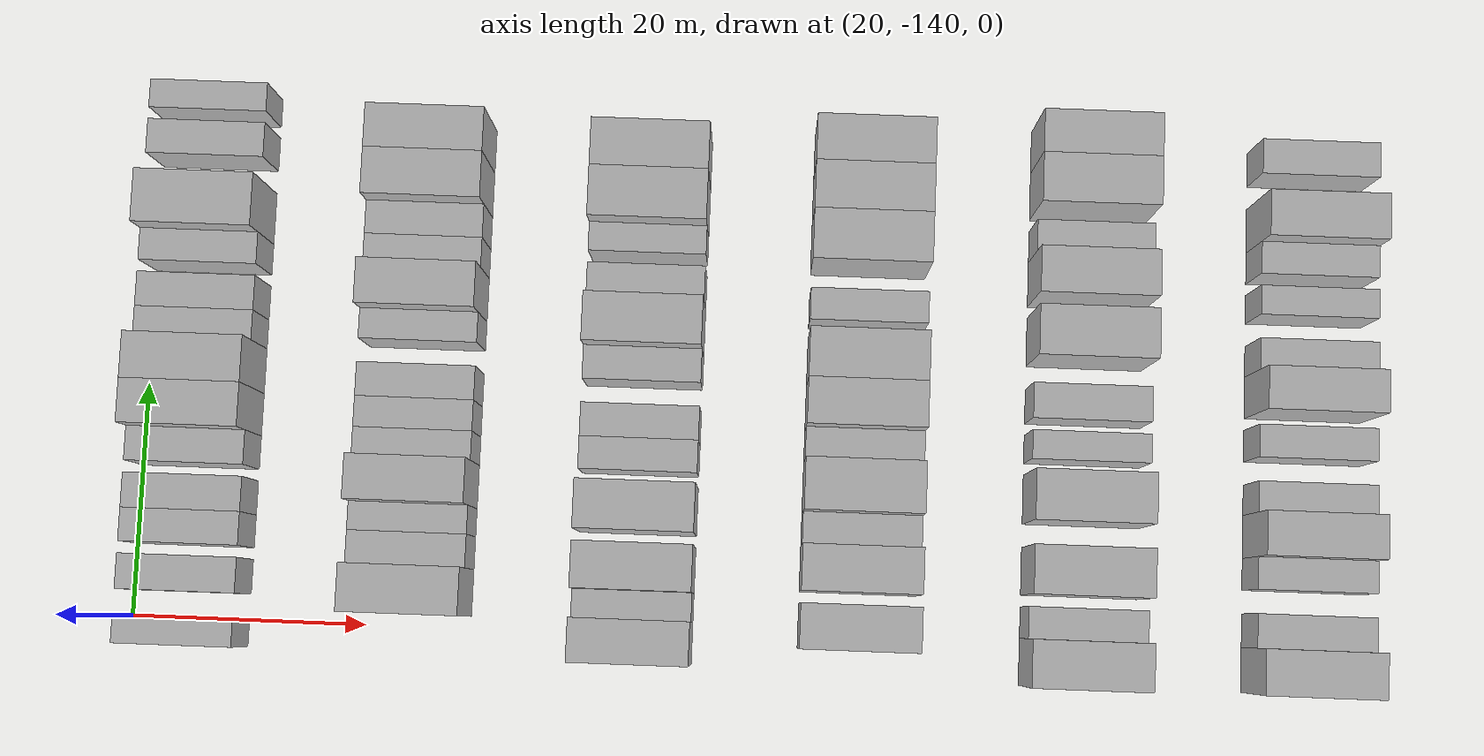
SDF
<sdf version="1.6">
 <world name="default">
  <model name="building_54">
   <static>1</static>
   <pose>25.0000 -140.9952 0 0.000000 0.000000 0.000000</pose>
   <link name="link">
    <pose>0 0 3.00 0 0 0</pose>
    <collision name="collision"><geometry><box><size>10.0000 2.4802 6.0000</size></box></geometry></collision>
    <visual name="visual">
     <cast_shadows>0</cast_shadows>
     <geometry><box><size>10.0000 2.4802 6.0000</size></box></geometry>
     <material>
      <script>
       <uri>model://HANNAS_wall/materials/scripts</uri>
       <uri>model://HANNAS_wall/materials/textures</uri>
       <name>vrc/HANNAS_wall</name>
      </script>
     </material>
    </visual>
   </link>
  </model>
  <model name="building_55">
   <static>1</static>
   <pose>25.0000 -136.2697 0 0.000000 0.000000 0.000000</pose>
   <link name="link">
    <pose>0 0 3.00 0 0 0</pose>
    <collision name="collision"><geometry><box><size>10.0000 2.9708 6.0000</size></box></geometry></collision>
    <visual name="visual">
     <cast_shadows>0</cast_shadows>
     <geometry><box><size>10.0000 2.9708 6.0000</size></box></geometry>
     <material>
      <script>
       <uri>model://HANNAS_wall/materials/scripts</uri>
       <uri>model://HANNAS_wall/materials/textures</uri>
       <name>vrc/HANNAS_wall</name>
      </script>
     </material>
    </visual>
   </link>
  </model>
  <model name="building_56">
   <static>1</static>
   <pose>25.0000 -132.3777 0 0.000000 0.000000 0.000000</pose>
   <link name="link">
    <pose>0 0 3.00 0 0 0</pose>
    <collision name="collision"><geometry><box><size>10.0000 2.8133 6.0000</size></box></geometry></collision>
    <visual name="visual">
     <cast_shadows>0</cast_shadows>
     <geometry><box><size>10.0000 2.8133 6.0000</size></box></geometry>
     <material>
      <script>
       <uri>model://HANNAS_wall/materials/scripts</uri>
       <uri>model://HANNAS_wall/materials/textures</uri>
       <name>vrc/HANNAS_wall</name>
      </script>
     </material>
    </visual>
   </link>
  </model>
  <model name="building_57">
   <static>1</static>
   <pose>25.0000 -129.4978 0 0.000000 0.000000 0.000000</pose>
   <link name="link">
    <pose>0 0 3.00 0 0 0</pose>
    <collision name="collision"><geometry><box><size>10.0000 2.9466 6.0000</size></box></geometry></collision>
    <visual name="visual">
     <cast_shadows>0</cast_shadows>
     <geometry><box><size>10.0000 2.9466 6.0000</size></box></geometry>
     <material>
      <script>
       <uri>model://HANNAS_wall/materials/scripts</uri>
       <uri>model://HANNAS_wall/materials/textures</uri>
       <name>vrc/HANNAS_wall</name>
      </script>
     </material>
    </visual>
   </link>
  </model>
  <model name="building_58">
   <static>1</static>
   <pose>25.0000 -125.5742 0 0.000000 0.000000 0.000000</pose>
   <link name="link">
    <pose>0 0 3.00 0 0 0</pose>
    <collision name="collision"><geometry><box><size>10.0000 2.9006 6.0000</size></box></geometry></collision>
    <visual name="visual">
     <cast_shadows>0</cast_shadows>
     <geometry><box><size>10.0000 2.9006 6.0000</size></box></geometry>
     <material>
      <script>
       <uri>model://HANNAS_wall/materials/scripts</uri>
       <uri>model://HANNAS_wall/materials/textures</uri>
       <name>vrc/HANNAS_wall</name>
      </script>
     </material>
    </visual>
   </link>
  </model>
  <model name="building_59">
   <static>1</static>
   <pose>25.0000 -122.2719 0 0.000000 0.000000 0.000000</pose>
   <link name="link">
    <pose>0 0 4.50 0 0 0</pose>
    <collision name="collision"><geometry><box><size>10.0000 3.7039 9.0000</size></box></geometry></collision>
    <visual name="visual">
     <cast_shadows>0</cast_shadows>
     <geometry><box><size>10.0000 3.7039 9.0000</size></box></geometry>
     <material>
      <script>
       <uri>model://HANNAS_wall/materials/scripts</uri>
       <uri>model://HANNAS_wall/materials/textures</uri>
       <name>vrc/HANNAS_wall</name>
      </script>
     </material>
    </visual>
   </link>
  </model>
  <model name="building_60">
   <static>1</static>
   <pose>25.0000 -118.4634 0 0.000000 0.000000 0.000000</pose>
   <link name="link">
    <pose>0 0 4.50 0 0 0</pose>
    <collision name="collision"><geometry><box><size>10.0000 3.9133 9.0000</size></box></geometry></collision>
    <visual name="visual">
     <cast_shadows>0</cast_shadows>
     <geometry><box><size>10.0000 3.9133 9.0000</size></box></geometry>
     <material>
      <script>
       <uri>model://HANNAS_wall/materials/scripts</uri>
       <uri>model://HANNAS_wall/materials/textures</uri>
       <name>vrc/HANNAS_wall</name>
      </script>
     </material>
    </visual>
   </link>
  </model>
  <model name="building_61">
   <static>1</static>
   <pose>25.0000 -115.2393 0 0.000000 0.000000 0.000000</pose>
   <link name="link">
    <pose>0 0 3.00 0 0 0</pose>
    <collision name="collision"><geometry><box><size>10.0000 2.5349 6.0000</size></box></geometry></collision>
    <visual name="visual">
     <cast_shadows>0</cast_shadows>
     <geometry><box><size>10.0000 2.5349 6.0000</size></box></geometry>
     <material>
      <script>
       <uri>model://HANNAS_wall/materials/scripts</uri>
       <uri>model://HANNAS_wall/materials/textures</uri>
       <name>vrc/HANNAS_wall</name>
      </script>
     </material>
    </visual>
   </link>
  </model>
  <model name="building_62">
   <static>1</static>
   <pose>25.0000 -112.4955 0 0.000000 0.000000 0.000000</pose>
   <link name="link">
    <pose>0 0 3.00 0 0 0</pose>
    <collision name="collision"><geometry><box><size>10.0000 2.9527 6.0000</size></box></geometry></collision>
    <visual name="visual">
     <cast_shadows>0</cast_shadows>
     <geometry><box><size>10.0000 2.9527 6.0000</size></box></geometry>
     <material>
      <script>
       <uri>model://HANNAS_wall/materials/scripts</uri>
       <uri>model://HANNAS_wall/materials/textures</uri>
       <name>vrc/HANNAS_wall</name>
      </script>
     </material>
    </visual>
   </link>
  </model>
  <model name="building_63">
   <static>1</static>
   <pose>25.0000 -108.6573 0 0.000000 0.000000 0.000000</pose>
   <link name="link">
    <pose>0 0 3.00 0 0 0</pose>
    <collision name="collision"><geometry><box><size>10.0000 2.7236 6.0000</size></box></geometry></collision>
    <visual name="visual">
     <cast_shadows>0</cast_shadows>
     <geometry><box><size>10.0000 2.7236 6.0000</size></box></geometry>
     <material>
      <script>
       <uri>model://HANNAS_wall/materials/scripts</uri>
       <uri>model://HANNAS_wall/materials/textures</uri>
       <name>vrc/HANNAS_wall</name>
      </script>
     </material>
    </visual>
   </link>
  </model>
  <model name="building_64">
   <static>1</static>
   <pose>25.0000 -105.0459 0 0.000000 0.000000 0.000000</pose>
   <link name="link">
    <pose>0 0 4.50 0 0 0</pose>
    <collision name="collision"><geometry><box><size>10.0000 4.4993 9.0000</size></box></geometry></collision>
    <visual name="visual">
     <cast_shadows>0</cast_shadows>
     <geometry><box><size>10.0000 4.4993 9.0000</size></box></geometry>
     <material>
      <script>
       <uri>model://HANNAS_wall/materials/scripts</uri>
       <uri>model://HANNAS_wall/materials/textures</uri>
       <name>vrc/HANNAS_wall</name>
      </script>
     </material>
    </visual>
   </link>
  </model>
  <model name="building_65">
   <static>1</static>
   <pose>25.0000 -99.3221 0 0.000000 0.000000 0.000000</pose>
   <link name="link">
    <pose>0 0 3.00 0 0 0</pose>
    <collision name="collision"><geometry><box><size>10.0000 2.9483 6.0000</size></box></geometry></collision>
    <visual name="visual">
     <cast_shadows>0</cast_shadows>
     <geometry><box><size>10.0000 2.9483 6.0000</size></box></geometry>
     <material>
      <script>
       <uri>model://HANNAS_wall/materials/scripts</uri>
       <uri>model://HANNAS_wall/materials/textures</uri>
       <name>vrc/HANNAS_wall</name>
      </script>
     </material>
    </visual>
   </link>
  </model>
  <model name="building_66">
   <static>1</static>
   <pose>25.0000 -95.6244 0 0.000000 0.000000 0.000000</pose>
   <link name="link">
    <pose>0 0 3.00 0 0 0</pose>
    <collision name="collision"><geometry><box><size>10.0000 2.4473 6.0000</size></box></geometry></collision>
    <visual name="visual">
     <cast_shadows>0</cast_shadows>
     <geometry><box><size>10.0000 2.4473 6.0000</size></box></geometry>
     <material>
      <script>
       <uri>model://HANNAS_wall/materials/scripts</uri>
       <uri>model://HANNAS_wall/materials/textures</uri>
       <name>vrc/HANNAS_wall</name>
      </script>
     </material>
    </visual>
   </link>
  </model>
  <model name="building_217">
   <static>1</static>
   <pose>44.0000 -136.9343 0 0.000000 0.000000 0.000000</pose>
   <link name="link">
    <pose>0 0 4.50 0 0 0</pose>
    <collision name="collision"><geometry><box><size>10.0000 3.9921 9.0000</size></box></geometry></collision>
    <visual name="visual">
     <cast_shadows>0</cast_shadows>
     <geometry><box><size>10.0000 3.9921 9.0000</size></box></geometry>
     <material>
      <script>
       <uri>model://HANNAS_wall/materials/scripts</uri>
       <uri>model://HANNAS_wall/materials/textures</uri>
       <name>vrc/HANNAS_wall</name>
      </script>
     </material>
    </visual>
   </link>
  </model>
  <model name="building_218">
   <static>1</static>
   <pose>44.0000 -133.5357 0 0.000000 0.000000 0.000000</pose>
   <link name="link">
    <pose>0 0 3.00 0 0 0</pose>
    <collision name="collision"><geometry><box><size>10.0000 2.8050 6.0000</size></box></geometry></collision>
    <visual name="visual">
     <cast_shadows>0</cast_shadows>
     <geometry><box><size>10.0000 2.8050 6.0000</size></box></geometry>
     <material>
      <script>
       <uri>model://HANNAS_wall/materials/scripts</uri>
       <uri>model://HANNAS_wall/materials/textures</uri>
       <name>vrc/HANNAS_wall</name>
      </script>
     </material>
    </visual>
   </link>
  </model>
  <model name="building_219">
   <static>1</static>
   <pose>44.0000 -130.9214 0 0.000000 0.000000 0.000000</pose>
   <link name="link">
    <pose>0 0 3.00 0 0 0</pose>
    <collision name="collision"><geometry><box><size>10.0000 2.4237 6.0000</size></box></geometry></collision>
    <visual name="visual">
     <cast_shadows>0</cast_shadows>
     <geometry><box><size>10.0000 2.4237 6.0000</size></box></geometry>
     <material>
      <script>
       <uri>model://HANNAS_wall/materials/scripts</uri>
       <uri>model://HANNAS_wall/materials/textures</uri>
       <name>vrc/HANNAS_wall</name>
      </script>
     </material>
    </visual>
   </link>
  </model>
  <model name="building_220">
   <static>1</static>
   <pose>44.0000 -127.8315 0 0.000000 0.000000 0.000000</pose>
   <link name="link">
    <pose>0 0 4.50 0 0 0</pose>
    <collision name="collision"><geometry><box><size>10.0000 3.7560 9.0000</size></box></geometry></collision>
    <visual name="visual">
     <cast_shadows>0</cast_shadows>
     <geometry><box><size>10.0000 3.7560 9.0000</size></box></geometry>
     <material>
      <script>
       <uri>model://HANNAS_wall/materials/scripts</uri>
       <uri>model://HANNAS_wall/materials/textures</uri>
       <name>vrc/HANNAS_wall</name>
      </script>
     </material>
    </visual>
   </link>
  </model>
  <model name="building_221">
   <static>1</static>
   <pose>44.0000 -124.7240 0 0.000000 0.000000 0.000000</pose>
   <link name="link">
    <pose>0 0 3.00 0 0 0</pose>
    <collision name="collision"><geometry><box><size>10.0000 2.4591 6.0000</size></box></geometry></collision>
    <visual name="visual">
     <cast_shadows>0</cast_shadows>
     <geometry><box><size>10.0000 2.4591 6.0000</size></box></geometry>
     <material>
      <script>
       <uri>model://HANNAS_wall/materials/scripts</uri>
       <uri>model://HANNAS_wall/materials/textures</uri>
       <name>vrc/HANNAS_wall</name>
      </script>
     </material>
    </visual>
   </link>
  </model>
  <model name="building_222">
   <static>1</static>
   <pose>44.0000 -122.1853 0 0.000000 0.000000 0.000000</pose>
   <link name="link">
    <pose>0 0 3.00 0 0 0</pose>
    <collision name="collision"><geometry><box><size>10.0000 2.6183 6.0000</size></box></geometry></collision>
    <visual name="visual">
     <cast_shadows>0</cast_shadows>
     <geometry><box><size>10.0000 2.6183 6.0000</size></box></geometry>
     <material>
      <script>
       <uri>model://HANNAS_wall/materials/scripts</uri>
       <uri>model://HANNAS_wall/materials/textures</uri>
       <name>vrc/HANNAS_wall</name>
      </script>
     </material>
    </visual>
   </link>
  </model>
  <model name="building_223">
   <static>1</static>
   <pose>44.0000 -119.4387 0 0.000000 0.000000 0.000000</pose>
   <link name="link">
    <pose>0 0 3.00 0 0 0</pose>
    <collision name="collision"><geometry><box><size>10.0000 2.8750 6.0000</size></box></geometry></collision>
    <visual name="visual">
     <cast_shadows>0</cast_shadows>
     <geometry><box><size>10.0000 2.8750 6.0000</size></box></geometry>
     <material>
      <script>
       <uri>model://HANNAS_wall/materials/scripts</uri>
       <uri>model://HANNAS_wall/materials/textures</uri>
       <name>vrc/HANNAS_wall</name>
      </script>
     </material>
    </visual>
   </link>
  </model>
  <model name="building_224">
   <static>1</static>
   <pose>44.0000 -114.7133 0 0.000000 0.000000 0.000000</pose>
   <link name="link">
    <pose>0 0 3.00 0 0 0</pose>
    <collision name="collision"><geometry><box><size>10.0000 2.5756 6.0000</size></box></geometry></collision>
    <visual name="visual">
     <cast_shadows>0</cast_shadows>
     <geometry><box><size>10.0000 2.5756 6.0000</size></box></geometry>
     <material>
      <script>
       <uri>model://HANNAS_wall/materials/scripts</uri>
       <uri>model://HANNAS_wall/materials/textures</uri>
       <name>vrc/HANNAS_wall</name>
      </script>
     </material>
    </visual>
   </link>
  </model>
  <model name="building_225">
   <static>1</static>
   <pose>44.0000 -111.5138 0 0.000000 0.000000 0.000000</pose>
   <link name="link">
    <pose>0 0 4.50 0 0 0</pose>
    <collision name="collision"><geometry><box><size>10.0000 3.8235 9.0000</size></box></geometry></collision>
    <visual name="visual">
     <cast_shadows>0</cast_shadows>
     <geometry><box><size>10.0000 3.8235 9.0000</size></box></geometry>
     <material>
      <script>
       <uri>model://HANNAS_wall/materials/scripts</uri>
       <uri>model://HANNAS_wall/materials/textures</uri>
       <name>vrc/HANNAS_wall</name>
      </script>
     </material>
    </visual>
   </link>
  </model>
  <model name="building_226">
   <static>1</static>
   <pose>44.0000 -108.3219 0 0.000000 0.000000 0.000000</pose>
   <link name="link">
    <pose>0 0 3.00 0 0 0</pose>
    <collision name="collision"><geometry><box><size>10.0000 2.5603 6.0000</size></box></geometry></collision>
    <visual name="visual">
     <cast_shadows>0</cast_shadows>
     <geometry><box><size>10.0000 2.5603 6.0000</size></box></geometry>
     <material>
      <script>
       <uri>model://HANNAS_wall/materials/scripts</uri>
       <uri>model://HANNAS_wall/materials/textures</uri>
       <name>vrc/HANNAS_wall</name>
      </script>
     </material>
    </visual>
   </link>
  </model>
  <model name="building_227">
   <static>1</static>
   <pose>44.0000 -105.6103 0 0.000000 0.000000 0.000000</pose>
   <link name="link">
    <pose>0 0 3.00 0 0 0</pose>
    <collision name="collision"><geometry><box><size>10.0000 2.8629 6.0000</size></box></geometry></collision>
    <visual name="visual">
     <cast_shadows>0</cast_shadows>
     <geometry><box><size>10.0000 2.8629 6.0000</size></box></geometry>
     <material>
      <script>
       <uri>model://HANNAS_wall/materials/scripts</uri>
       <uri>model://HANNAS_wall/materials/textures</uri>
       <name>vrc/HANNAS_wall</name>
      </script>
     </material>
    </visual>
   </link>
  </model>
  <model name="building_228">
   <static>1</static>
   <pose>44.0000 -102.2032 0 0.000000 0.000000 0.000000</pose>
   <link name="link">
    <pose>0 0 4.50 0 0 0</pose>
    <collision name="collision"><geometry><box><size>10.0000 3.9513 9.0000</size></box></geometry></collision>
    <visual name="visual">
     <cast_shadows>0</cast_shadows>
     <geometry><box><size>10.0000 3.9513 9.0000</size></box></geometry>
     <material>
      <script>
       <uri>model://HANNAS_wall/materials/scripts</uri>
       <uri>model://HANNAS_wall/materials/textures</uri>
       <name>vrc/HANNAS_wall</name>
      </script>
     </material>
    </visual>
   </link>
  </model>
  <model name="building_229">
   <static>1</static>
   <pose>44.0000 -98.3536 0 0.000000 0.000000 0.000000</pose>
   <link name="link">
    <pose>0 0 4.50 0 0 0</pose>
    <collision name="collision"><geometry><box><size>10.0000 3.7477 9.0000</size></box></geometry></collision>
    <visual name="visual">
     <cast_shadows>0</cast_shadows>
     <geometry><box><size>10.0000 3.7477 9.0000</size></box></geometry>
     <material>
      <script>
       <uri>model://HANNAS_wall/materials/scripts</uri>
       <uri>model://HANNAS_wall/materials/textures</uri>
       <name>vrc/HANNAS_wall</name>
      </script>
     </material>
    </visual>
   </link>
  </model>
  <model name="building_401">
   <static>1</static>
   <pose>63.0000 -140.5039 0 0.000000 0.000000 0.000000</pose>
   <link name="link">
    <pose>0 0 4.50 0 0 0</pose>
    <collision name="collision"><geometry><box><size>10.0000 3.6578 9.0000</size></box></geometry></collision>
    <visual name="visual">
     <cast_shadows>0</cast_shadows>
     <geometry><box><size>10.0000 3.6578 9.0000</size></box></geometry>
     <material>
      <script>
       <uri>model://HANNAS_wall/materials/scripts</uri>
       <uri>model://HANNAS_wall/materials/textures</uri>
       <name>vrc/HANNAS_wall</name>
      </script>
     </material>
    </visual>
   </link>
  </model>
  <model name="building_402">
   <static>1</static>
   <pose>63.0000 -137.4738 0 0.000000 0.000000 0.000000</pose>
   <link name="link">
    <pose>0 0 3.00 0 0 0</pose>
    <collision name="collision"><geometry><box><size>10.0000 2.4025 6.0000</size></box></geometry></collision>
    <visual name="visual">
     <cast_shadows>0</cast_shadows>
     <geometry><box><size>10.0000 2.4025 6.0000</size></box></geometry>
     <material>
      <script>
       <uri>model://HANNAS_wall/materials/scripts</uri>
       <uri>model://HANNAS_wall/materials/textures</uri>
       <name>vrc/HANNAS_wall</name>
      </script>
     </material>
    </visual>
   </link>
  </model>
  <model name="building_403">
   <static>1</static>
   <pose>63.0000 -134.3215 0 0.000000 0.000000 0.000000</pose>
   <link name="link">
    <pose>0 0 4.50 0 0 0</pose>
    <collision name="collision"><geometry><box><size>10.0000 3.9021 9.0000</size></box></geometry></collision>
    <visual name="visual">
     <cast_shadows>0</cast_shadows>
     <geometry><box><size>10.0000 3.9021 9.0000</size></box></geometry>
     <material>
      <script>
       <uri>model://HANNAS_wall/materials/scripts</uri>
       <uri>model://HANNAS_wall/materials/textures</uri>
       <name>vrc/HANNAS_wall</name>
      </script>
     </material>
    </visual>
   </link>
  </model>
  <model name="building_404">
   <static>1</static>
   <pose>63.0000 -129.3257 0 0.000000 0.000000 0.000000</pose>
   <link name="link">
    <pose>0 0 4.50 0 0 0</pose>
    <collision name="collision"><geometry><box><size>10.0000 4.0895 9.0000</size></box></geometry></collision>
    <visual name="visual">
     <cast_shadows>0</cast_shadows>
     <geometry><box><size>10.0000 4.0895 9.0000</size></box></geometry>
     <material>
      <script>
       <uri>model://HANNAS_wall/materials/scripts</uri>
       <uri>model://HANNAS_wall/materials/textures</uri>
       <name>vrc/HANNAS_wall</name>
      </script>
     </material>
    </visual>
   </link>
  </model>
  <model name="building_405">
   <static>1</static>
   <pose>63.0000 -124.9077 0 0.000000 0.000000 0.000000</pose>
   <link name="link">
    <pose>0 0 3.00 0 0 0</pose>
    <collision name="collision"><geometry><box><size>10.0000 2.7465 6.0000</size></box></geometry></collision>
    <visual name="visual">
     <cast_shadows>0</cast_shadows>
     <geometry><box><size>10.0000 2.7465 6.0000</size></box></geometry>
     <material>
      <script>
       <uri>model://HANNAS_wall/materials/scripts</uri>
       <uri>model://HANNAS_wall/materials/textures</uri>
       <name>vrc/HANNAS_wall</name>
      </script>
     </material>
    </visual>
   </link>
  </model>
  <model name="building_406">
   <static>1</static>
   <pose>63.0000 -122.1117 0 0.000000 0.000000 0.000000</pose>
   <link name="link">
    <pose>0 0 3.00 0 0 0</pose>
    <collision name="collision"><geometry><box><size>10.0000 2.8454 6.0000</size></box></geometry></collision>
    <visual name="visual">
     <cast_shadows>0</cast_shadows>
     <geometry><box><size>10.0000 2.8454 6.0000</size></box></geometry>
     <material>
      <script>
       <uri>model://HANNAS_wall/materials/scripts</uri>
       <uri>model://HANNAS_wall/materials/textures</uri>
       <name>vrc/HANNAS_wall</name>
      </script>
     </material>
    </visual>
   </link>
  </model>
  <model name="building_407">
   <static>1</static>
   <pose>63.0000 -117.2619 0 0.000000 0.000000 0.000000</pose>
   <link name="link">
    <pose>0 0 3.00 0 0 0</pose>
    <collision name="collision"><geometry><box><size>10.0000 2.8542 6.0000</size></box></geometry></collision>
    <visual name="visual">
     <cast_shadows>0</cast_shadows>
     <geometry><box><size>10.0000 2.8542 6.0000</size></box></geometry>
     <material>
      <script>
       <uri>model://HANNAS_wall/materials/scripts</uri>
       <uri>model://HANNAS_wall/materials/textures</uri>
       <name>vrc/HANNAS_wall</name>
      </script>
     </material>
    </visual>
   </link>
  </model>
  <model name="building_408">
   <static>1</static>
   <pose>63.0000 -113.7698 0 0.000000 0.000000 0.000000</pose>
   <link name="link">
    <pose>0 0 4.50 0 0 0</pose>
    <collision name="collision"><geometry><box><size>10.0000 4.1301 9.0000</size></box></geometry></collision>
    <visual name="visual">
     <cast_shadows>0</cast_shadows>
     <geometry><box><size>10.0000 4.1301 9.0000</size></box></geometry>
     <material>
      <script>
       <uri>model://HANNAS_wall/materials/scripts</uri>
       <uri>model://HANNAS_wall/materials/textures</uri>
       <name>vrc/HANNAS_wall</name>
      </script>
     </material>
    </visual>
   </link>
  </model>
  <model name="building_409">
   <static>1</static>
   <pose>63.0000 -110.2375 0 0.000000 0.000000 0.000000</pose>
   <link name="link">
    <pose>0 0 3.00 0 0 0</pose>
    <collision name="collision"><geometry><box><size>10.0000 2.9344 6.0000</size></box></geometry></collision>
    <visual name="visual">
     <cast_shadows>0</cast_shadows>
     <geometry><box><size>10.0000 2.9344 6.0000</size></box></geometry>
     <material>
      <script>
       <uri>model://HANNAS_wall/materials/scripts</uri>
       <uri>model://HANNAS_wall/materials/textures</uri>
       <name>vrc/HANNAS_wall</name>
      </script>
     </material>
    </visual>
   </link>
  </model>
  <model name="building_410">
   <static>1</static>
   <pose>63.0000 -106.5448 0 0.000000 0.000000 0.000000</pose>
   <link name="link">
    <pose>0 0 3.00 0 0 0</pose>
    <collision name="collision"><geometry><box><size>10.0000 2.4510 6.0000</size></box></geometry></collision>
    <visual name="visual">
     <cast_shadows>0</cast_shadows>
     <geometry><box><size>10.0000 2.4510 6.0000</size></box></geometry>
     <material>
      <script>
       <uri>model://HANNAS_wall/materials/scripts</uri>
       <uri>model://HANNAS_wall/materials/textures</uri>
       <name>vrc/HANNAS_wall</name>
      </script>
     </material>
    </visual>
   </link>
  </model>
  <model name="building_411">
   <static>1</static>
   <pose>63.0000 -103.1735 0 0.000000 0.000000 0.000000</pose>
   <link name="link">
    <pose>0 0 4.50 0 0 0</pose>
    <collision name="collision"><geometry><box><size>10.0000 4.2916 9.0000</size></box></geometry></collision>
    <visual name="visual">
     <cast_shadows>0</cast_shadows>
     <geometry><box><size>10.0000 4.2916 9.0000</size></box></geometry>
     <material>
      <script>
       <uri>model://HANNAS_wall/materials/scripts</uri>
       <uri>model://HANNAS_wall/materials/textures</uri>
       <name>vrc/HANNAS_wall</name>
      </script>
     </material>
    </visual>
   </link>
  </model>
  <model name="building_412">
   <static>1</static>
   <pose>63.0000 -99.0100 0 0.000000 0.000000 0.000000</pose>
   <link name="link">
    <pose>0 0 4.50 0 0 0</pose>
    <collision name="collision"><geometry><box><size>10.0000 4.0353 9.0000</size></box></geometry></collision>
    <visual name="visual">
     <cast_shadows>0</cast_shadows>
     <geometry><box><size>10.0000 4.0353 9.0000</size></box></geometry>
     <material>
      <script>
       <uri>model://HANNAS_wall/materials/scripts</uri>
       <uri>model://HANNAS_wall/materials/textures</uri>
       <name>vrc/HANNAS_wall</name>
      </script>
     </material>
    </visual>
   </link>
  </model>
  <model name="building_562">
   <static>1</static>
   <pose>82.0000 -138.6441 0 0.000000 0.000000 0.000000</pose>
   <link name="link">
    <pose>0 0 4.50 0 0 0</pose>
    <collision name="collision"><geometry><box><size>10.0000 3.7597 9.0000</size></box></geometry></collision>
    <visual name="visual">
     <cast_shadows>0</cast_shadows>
     <geometry><box><size>10.0000 3.7597 9.0000</size></box></geometry>
     <material>
      <script>
       <uri>model://HANNAS_wall/materials/scripts</uri>
       <uri>model://HANNAS_wall/materials/textures</uri>
       <name>vrc/HANNAS_wall</name>
      </script>
     </material>
    </visual>
   </link>
  </model>
  <model name="building_563">
   <static>1</static>
   <pose>82.0000 -133.8293 0 0.000000 0.000000 0.000000</pose>
   <link name="link">
    <pose>0 0 4.50 0 0 0</pose>
    <collision name="collision"><geometry><box><size>10.0000 3.8699 9.0000</size></box></geometry></collision>
    <visual name="visual">
     <cast_shadows>0</cast_shadows>
     <geometry><box><size>10.0000 3.8699 9.0000</size></box></geometry>
     <material>
      <script>
       <uri>model://HANNAS_wall/materials/scripts</uri>
       <uri>model://HANNAS_wall/materials/textures</uri>
       <name>vrc/HANNAS_wall</name>
      </script>
     </material>
    </visual>
   </link>
  </model>
  <model name="building_564">
   <static>1</static>
   <pose>82.0000 -130.5131 0 0.000000 0.000000 0.000000</pose>
   <link name="link">
    <pose>0 0 3.00 0 0 0</pose>
    <collision name="collision"><geometry><box><size>10.0000 2.7626 6.0000</size></box></geometry></collision>
    <visual name="visual">
     <cast_shadows>0</cast_shadows>
     <geometry><box><size>10.0000 2.7626 6.0000</size></box></geometry>
     <material>
      <script>
       <uri>model://HANNAS_wall/materials/scripts</uri>
       <uri>model://HANNAS_wall/materials/textures</uri>
       <name>vrc/HANNAS_wall</name>
      </script>
     </material>
    </visual>
   </link>
  </model>
  <model name="building_565">
   <static>1</static>
   <pose>82.0000 -126.9445 0 0.000000 0.000000 0.000000</pose>
   <link name="link">
    <pose>0 0 4.50 0 0 0</pose>
    <collision name="collision"><geometry><box><size>10.0000 4.3745 9.0000</size></box></geometry></collision>
    <visual name="visual">
     <cast_shadows>0</cast_shadows>
     <geometry><box><size>10.0000 4.3745 9.0000</size></box></geometry>
     <material>
      <script>
       <uri>model://HANNAS_wall/materials/scripts</uri>
       <uri>model://HANNAS_wall/materials/textures</uri>
       <name>vrc/HANNAS_wall</name>
      </script>
     </material>
    </visual>
   </link>
  </model>
  <model name="building_566">
   <static>1</static>
   <pose>82.0000 -123.3938 0 0.000000 0.000000 0.000000</pose>
   <link name="link">
    <pose>0 0 3.00 0 0 0</pose>
    <collision name="collision"><geometry><box><size>10.0000 2.7269 6.0000</size></box></geometry></collision>
    <visual name="visual">
     <cast_shadows>0</cast_shadows>
     <geometry><box><size>10.0000 2.7269 6.0000</size></box></geometry>
     <material>
      <script>
       <uri>model://HANNAS_wall/materials/scripts</uri>
       <uri>model://HANNAS_wall/materials/textures</uri>
       <name>vrc/HANNAS_wall</name>
      </script>
     </material>
    </visual>
   </link>
  </model>
  <model name="building_567">
   <static>1</static>
   <pose>82.0000 -120.0756 0 0.000000 0.000000 0.000000</pose>
   <link name="link">
    <pose>0 0 4.50 0 0 0</pose>
    <collision name="collision"><geometry><box><size>10.0000 3.9095 9.0000</size></box></geometry></collision>
    <visual name="visual">
     <cast_shadows>0</cast_shadows>
     <geometry><box><size>10.0000 3.9095 9.0000</size></box></geometry>
     <material>
      <script>
       <uri>model://HANNAS_wall/materials/scripts</uri>
       <uri>model://HANNAS_wall/materials/textures</uri>
       <name>vrc/HANNAS_wall</name>
      </script>
     </material>
    </visual>
   </link>
  </model>
  <model name="building_568">
   <static>1</static>
   <pose>82.0000 -116.0273 0 0.000000 0.000000 0.000000</pose>
   <link name="link">
    <pose>0 0 4.50 0 0 0</pose>
    <collision name="collision"><geometry><box><size>10.0000 4.1872 9.0000</size></box></geometry></collision>
    <visual name="visual">
     <cast_shadows>0</cast_shadows>
     <geometry><box><size>10.0000 4.1872 9.0000</size></box></geometry>
     <material>
      <script>
       <uri>model://HANNAS_wall/materials/scripts</uri>
       <uri>model://HANNAS_wall/materials/textures</uri>
       <name>vrc/HANNAS_wall</name>
      </script>
     </material>
    </visual>
   </link>
  </model>
  <model name="building_569">
   <static>1</static>
   <pose>82.0000 -111.5805 0 0.000000 0.000000 0.000000</pose>
   <link name="link">
    <pose>0 0 3.00 0 0 0</pose>
    <collision name="collision"><geometry><box><size>10.0000 2.7064 6.0000</size></box></geometry></collision>
    <visual name="visual">
     <cast_shadows>0</cast_shadows>
     <geometry><box><size>10.0000 2.7064 6.0000</size></box></geometry>
     <material>
      <script>
       <uri>model://HANNAS_wall/materials/scripts</uri>
       <uri>model://HANNAS_wall/materials/textures</uri>
       <name>vrc/HANNAS_wall</name>
      </script>
     </material>
    </visual>
   </link>
  </model>
  <model name="building_570">
   <static>1</static>
   <pose>82.0000 -106.0889 0 0.000000 0.000000 0.000000</pose>
   <link name="link">
    <pose>0 0 4.50 0 0 0</pose>
    <collision name="collision"><geometry><box><size>10.0000 4.2767 9.0000</size></box></geometry></collision>
    <visual name="visual">
     <cast_shadows>0</cast_shadows>
     <geometry><box><size>10.0000 4.2767 9.0000</size></box></geometry>
     <material>
      <script>
       <uri>model://HANNAS_wall/materials/scripts</uri>
       <uri>model://HANNAS_wall/materials/textures</uri>
       <name>vrc/HANNAS_wall</name>
      </script>
     </material>
    </visual>
   </link>
  </model>
  <model name="building_571">
   <static>1</static>
   <pose>82.0000 -101.9054 0 0.000000 0.000000 0.000000</pose>
   <link name="link">
    <pose>0 0 4.50 0 0 0</pose>
    <collision name="collision"><geometry><box><size>10.0000 4.0905 9.0000</size></box></geometry></collision>
    <visual name="visual">
     <cast_shadows>0</cast_shadows>
     <geometry><box><size>10.0000 4.0905 9.0000</size></box></geometry>
     <material>
      <script>
       <uri>model://HANNAS_wall/materials/scripts</uri>
       <uri>model://HANNAS_wall/materials/textures</uri>
       <name>vrc/HANNAS_wall</name>
      </script>
     </material>
    </visual>
   </link>
  </model>
  <model name="building_572">
   <static>1</static>
   <pose>82.0000 -97.8890 0 0.000000 0.000000 0.000000</pose>
   <link name="link">
    <pose>0 0 4.50 0 0 0</pose>
    <collision name="collision"><geometry><box><size>10.0000 3.9422 9.0000</size></box></geometry></collision>
    <visual name="visual">
     <cast_shadows>0</cast_shadows>
     <geometry><box><size>10.0000 3.9422 9.0000</size></box></geometry>
     <material>
      <script>
       <uri>model://HANNAS_wall/materials/scripts</uri>
       <uri>model://HANNAS_wall/materials/textures</uri>
       <name>vrc/HANNAS_wall</name>
      </script>
     </material>
    </visual>
   </link>
  </model>
  <model name="building_714">
   <static>1</static>
   <pose>101.0000 -140.9831 0 0.000000 0.000000 0.000000</pose>
   <link name="link">
    <pose>0 0 4.50 0 0 0</pose>
    <collision name="collision"><geometry><box><size>10.0000 3.9888 9.0000</size></box></geometry></collision>
    <visual name="visual">
     <cast_shadows>0</cast_shadows>
     <geometry><box><size>10.0000 3.9888 9.0000</size></box></geometry>
     <material>
      <script>
       <uri>model://HANNAS_wall/materials/scripts</uri>
       <uri>model://HANNAS_wall/materials/textures</uri>
       <name>vrc/HANNAS_wall</name>
      </script>
     </material>
    </visual>
   </link>
  </model>
  <model name="building_715">
   <static>1</static>
   <pose>101.0000 -137.6524 0 0.000000 0.000000 0.000000</pose>
   <link name="link">
    <pose>0 0 3.00 0 0 0</pose>
    <collision name="collision"><geometry><box><size>10.0000 2.6725 6.0000</size></box></geometry></collision>
    <visual name="visual">
     <cast_shadows>0</cast_shadows>
     <geometry><box><size>10.0000 2.6725 6.0000</size></box></geometry>
     <material>
      <script>
       <uri>model://HANNAS_wall/materials/scripts</uri>
       <uri>model://HANNAS_wall/materials/textures</uri>
       <name>vrc/HANNAS_wall</name>
      </script>
     </material>
    </visual>
   </link>
  </model>
  <model name="building_716">
   <static>1</static>
   <pose>101.0000 -133.2801 0 0.000000 0.000000 0.000000</pose>
   <link name="link">
    <pose>0 0 4.50 0 0 0</pose>
    <collision name="collision"><geometry><box><size>10.0000 4.0721 9.0000</size></box></geometry></collision>
    <visual name="visual">
     <cast_shadows>0</cast_shadows>
     <geometry><box><size>10.0000 4.0721 9.0000</size></box></geometry>
     <material>
      <script>
       <uri>model://HANNAS_wall/materials/scripts</uri>
       <uri>model://HANNAS_wall/materials/textures</uri>
       <name>vrc/HANNAS_wall</name>
      </script>
     </material>
    </visual>
   </link>
  </model>
  <model name="building_717">
   <static>1</static>
   <pose>101.0000 -127.1280 0 0.000000 0.000000 0.000000</pose>
   <link name="link">
    <pose>0 0 4.50 0 0 0</pose>
    <collision name="collision"><geometry><box><size>10.0000 4.2321 9.0000</size></box></geometry></collision>
    <visual name="visual">
     <cast_shadows>0</cast_shadows>
     <geometry><box><size>10.0000 4.2321 9.0000</size></box></geometry>
     <material>
      <script>
       <uri>model://HANNAS_wall/materials/scripts</uri>
       <uri>model://HANNAS_wall/materials/textures</uri>
       <name>vrc/HANNAS_wall</name>
      </script>
     </material>
    </visual>
   </link>
  </model>
  <model name="building_718">
   <static>1</static>
   <pose>101.0000 -122.7914 0 0.000000 0.000000 0.000000</pose>
   <link name="link">
    <pose>0 0 3.00 0 0 0</pose>
    <collision name="collision"><geometry><box><size>10.0000 2.4412 6.0000</size></box></geometry></collision>
    <visual name="visual">
     <cast_shadows>0</cast_shadows>
     <geometry><box><size>10.0000 2.4412 6.0000</size></box></geometry>
     <material>
      <script>
       <uri>model://HANNAS_wall/materials/scripts</uri>
       <uri>model://HANNAS_wall/materials/textures</uri>
       <name>vrc/HANNAS_wall</name>
      </script>
     </material>
    </visual>
   </link>
  </model>
  <model name="building_719">
   <static>1</static>
   <pose>101.0000 -119.0710 0 0.000000 0.000000 0.000000</pose>
   <link name="link">
    <pose>0 0 3.00 0 0 0</pose>
    <collision name="collision"><geometry><box><size>10.0000 2.9996 6.0000</size></box></geometry></collision>
    <visual name="visual">
     <cast_shadows>0</cast_shadows>
     <geometry><box><size>10.0000 2.9996 6.0000</size></box></geometry>
     <material>
      <script>
       <uri>model://HANNAS_wall/materials/scripts</uri>
       <uri>model://HANNAS_wall/materials/textures</uri>
       <name>vrc/HANNAS_wall</name>
      </script>
     </material>
    </visual>
   </link>
  </model>
  <model name="building_720">
   <static>1</static>
   <pose>101.0000 -113.4503 0 0.000000 0.000000 0.000000</pose>
   <link name="link">
    <pose>0 0 4.50 0 0 0</pose>
    <collision name="collision"><geometry><box><size>10.0000 4.2418 9.0000</size></box></geometry></collision>
    <visual name="visual">
     <cast_shadows>0</cast_shadows>
     <geometry><box><size>10.0000 4.2418 9.0000</size></box></geometry>
     <material>
      <script>
       <uri>model://HANNAS_wall/materials/scripts</uri>
       <uri>model://HANNAS_wall/materials/textures</uri>
       <name>vrc/HANNAS_wall</name>
      </script>
     </material>
    </visual>
   </link>
  </model>
  <model name="building_721">
   <static>1</static>
   <pose>101.0000 -108.3722 0 0.000000 0.000000 0.000000</pose>
   <link name="link">
    <pose>0 0 4.50 0 0 0</pose>
    <collision name="collision"><geometry><box><size>10.0000 3.9143 9.0000</size></box></geometry></collision>
    <visual name="visual">
     <cast_shadows>0</cast_shadows>
     <geometry><box><size>10.0000 3.9143 9.0000</size></box></geometry>
     <material>
      <script>
       <uri>model://HANNAS_wall/materials/scripts</uri>
       <uri>model://HANNAS_wall/materials/textures</uri>
       <name>vrc/HANNAS_wall</name>
      </script>
     </material>
    </visual>
   </link>
  </model>
  <model name="building_722">
   <static>1</static>
   <pose>101.0000 -105.0410 0 0.000000 0.000000 0.000000</pose>
   <link name="link">
    <pose>0 0 3.00 0 0 0</pose>
    <collision name="collision"><geometry><box><size>10.0000 2.7483 6.0000</size></box></geometry></collision>
    <visual name="visual">
     <cast_shadows>0</cast_shadows>
     <geometry><box><size>10.0000 2.7483 6.0000</size></box></geometry>
     <material>
      <script>
       <uri>model://HANNAS_wall/materials/scripts</uri>
       <uri>model://HANNAS_wall/materials/textures</uri>
       <name>vrc/HANNAS_wall</name>
      </script>
     </material>
    </visual>
   </link>
  </model>
  <model name="building_723">
   <static>1</static>
   <pose>101.0000 -100.5813 0 0.000000 0.000000 0.000000</pose>
   <link name="link">
    <pose>0 0 4.50 0 0 0</pose>
    <collision name="collision"><geometry><box><size>10.0000 4.1710 9.0000</size></box></geometry></collision>
    <visual name="visual">
     <cast_shadows>0</cast_shadows>
     <geometry><box><size>10.0000 4.1710 9.0000</size></box></geometry>
     <material>
      <script>
       <uri>model://HANNAS_wall/materials/scripts</uri>
       <uri>model://HANNAS_wall/materials/textures</uri>
       <name>vrc/HANNAS_wall</name>
      </script>
     </material>
    </visual>
   </link>
  </model>
  <model name="building_724">
   <static>1</static>
   <pose>101.0000 -96.6541 0 0.000000 0.000000 0.000000</pose>
   <link name="link">
    <pose>0 0 4.50 0 0 0</pose>
    <collision name="collision"><geometry><box><size>10.0000 3.6835 9.0000</size></box></geometry></collision>
    <visual name="visual">
     <cast_shadows>0</cast_shadows>
     <geometry><box><size>10.0000 3.6835 9.0000</size></box></geometry>
     <material>
      <script>
       <uri>model://HANNAS_wall/materials/scripts</uri>
       <uri>model://HANNAS_wall/materials/textures</uri>
       <name>vrc/HANNAS_wall</name>
      </script>
     </material>
    </visual>
   </link>
  </model>
  <model name="building_891">
   <static>1</static>
   <pose>120.0000 -140.9474 0 0.000000 0.000000 0.000000</pose>
   <link name="link">
    <pose>0 0 4.50 0 0 0</pose>
    <collision name="collision"><geometry><box><size>10.0000 3.8096 9.0000</size></box></geometry></collision>
    <visual name="visual">
     <cast_shadows>0</cast_shadows>
     <geometry><box><size>10.0000 3.8096 9.0000</size></box></geometry>
     <material>
      <script>
       <uri>model://HANNAS_wall/materials/scripts</uri>
       <uri>model://HANNAS_wall/materials/textures</uri>
       <name>vrc/HANNAS_wall</name>
      </script>
     </material>
    </visual>
   </link>
  </model>
  <model name="building_892">
   <static>1</static>
   <pose>120.0000 -137.6117 0 0.000000 0.000000 0.000000</pose>
   <link name="link">
    <pose>0 0 3.00 0 0 0</pose>
    <collision name="collision"><geometry><box><size>10.0000 2.8617 6.0000</size></box></geometry></collision>
    <visual name="visual">
     <cast_shadows>0</cast_shadows>
     <geometry><box><size>10.0000 2.8617 6.0000</size></box></geometry>
     <material>
      <script>
       <uri>model://HANNAS_wall/materials/scripts</uri>
       <uri>model://HANNAS_wall/materials/textures</uri>
       <name>vrc/HANNAS_wall</name>
      </script>
     </material>
    </visual>
   </link>
  </model>
  <model name="building_893">
   <static>1</static>
   <pose>120.0000 -132.8155 0 0.000000 0.000000 0.000000</pose>
   <link name="link">
    <pose>0 0 3.00 0 0 0</pose>
    <collision name="collision"><geometry><box><size>10.0000 2.7308 6.0000</size></box></geometry></collision>
    <visual name="visual">
     <cast_shadows>0</cast_shadows>
     <geometry><box><size>10.0000 2.7308 6.0000</size></box></geometry>
     <material>
      <script>
       <uri>model://HANNAS_wall/materials/scripts</uri>
       <uri>model://HANNAS_wall/materials/textures</uri>
       <name>vrc/HANNAS_wall</name>
      </script>
     </material>
    </visual>
   </link>
  </model>
  <model name="building_894">
   <static>1</static>
   <pose>120.0000 -129.5992 0 0.000000 0.000000 0.000000</pose>
   <link name="link">
    <pose>0 0 4.50 0 0 0</pose>
    <collision name="collision"><geometry><box><size>10.0000 3.7018 9.0000</size></box></geometry></collision>
    <visual name="visual">
     <cast_shadows>0</cast_shadows>
     <geometry><box><size>10.0000 3.7018 9.0000</size></box></geometry>
     <material>
      <script>
       <uri>model://HANNAS_wall/materials/scripts</uri>
       <uri>model://HANNAS_wall/materials/textures</uri>
       <name>vrc/HANNAS_wall</name>
      </script>
     </material>
    </visual>
   </link>
  </model>
  <model name="building_895">
   <static>1</static>
   <pose>120.0000 -126.4456 0 0.000000 0.000000 0.000000</pose>
   <link name="link">
    <pose>0 0 3.00 0 0 0</pose>
    <collision name="collision"><geometry><box><size>10.0000 2.6053 6.0000</size></box></geometry></collision>
    <visual name="visual">
     <cast_shadows>0</cast_shadows>
     <geometry><box><size>10.0000 2.6053 6.0000</size></box></geometry>
     <material>
      <script>
       <uri>model://HANNAS_wall/materials/scripts</uri>
       <uri>model://HANNAS_wall/materials/textures</uri>
       <name>vrc/HANNAS_wall</name>
      </script>
     </material>
    </visual>
   </link>
  </model>
  <model name="building_896">
   <static>1</static>
   <pose>120.0000 -121.7625 0 0.000000 0.000000 0.000000</pose>
   <link name="link">
    <pose>0 0 3.00 0 0 0</pose>
    <collision name="collision"><geometry><box><size>10.0000 2.7611 6.0000</size></box></geometry></collision>
    <visual name="visual">
     <cast_shadows>0</cast_shadows>
     <geometry><box><size>10.0000 2.7611 6.0000</size></box></geometry>
     <material>
      <script>
       <uri>model://HANNAS_wall/materials/scripts</uri>
       <uri>model://HANNAS_wall/materials/textures</uri>
       <name>vrc/HANNAS_wall</name>
      </script>
     </material>
    </visual>
   </link>
  </model>
  <model name="building_897">
   <static>1</static>
   <pose>120.0000 -117.5698 0 0.000000 0.000000 0.000000</pose>
   <link name="link">
    <pose>0 0 4.50 0 0 0</pose>
    <collision name="collision"><geometry><box><size>10.0000 3.6242 9.0000</size></box></geometry></collision>
    <visual name="visual">
     <cast_shadows>0</cast_shadows>
     <geometry><box><size>10.0000 3.6242 9.0000</size></box></geometry>
     <material>
      <script>
       <uri>model://HANNAS_wall/materials/scripts</uri>
       <uri>model://HANNAS_wall/materials/textures</uri>
       <name>vrc/HANNAS_wall</name>
      </script>
     </material>
    </visual>
   </link>
  </model>
  <model name="building_898">
   <static>1</static>
   <pose>120.0000 -114.4164 0 0.000000 0.000000 0.000000</pose>
   <link name="link">
    <pose>0 0 3.00 0 0 0</pose>
    <collision name="collision"><geometry><box><size>10.0000 2.6827 6.0000</size></box></geometry></collision>
    <visual name="visual">
     <cast_shadows>0</cast_shadows>
     <geometry><box><size>10.0000 2.6827 6.0000</size></box></geometry>
     <material>
      <script>
       <uri>model://HANNAS_wall/materials/scripts</uri>
       <uri>model://HANNAS_wall/materials/textures</uri>
       <name>vrc/HANNAS_wall</name>
      </script>
     </material>
    </visual>
   </link>
  </model>
  <model name="building_899">
   <static>1</static>
   <pose>120.0000 -109.8313 0 0.000000 0.000000 0.000000</pose>
   <link name="link">
    <pose>0 0 3.00 0 0 0</pose>
    <collision name="collision"><geometry><box><size>10.0000 2.4875 6.0000</size></box></geometry></collision>
    <visual name="visual">
     <cast_shadows>0</cast_shadows>
     <geometry><box><size>10.0000 2.4875 6.0000</size></box></geometry>
     <material>
      <script>
       <uri>model://HANNAS_wall/materials/scripts</uri>
       <uri>model://HANNAS_wall/materials/textures</uri>
       <name>vrc/HANNAS_wall</name>
      </script>
     </material>
    </visual>
   </link>
  </model>
  <model name="building_900">
   <static>1</static>
   <pose>120.0000 -106.2170 0 0.000000 0.000000 0.000000</pose>
   <link name="link">
    <pose>0 0 3.00 0 0 0</pose>
    <collision name="collision"><geometry><box><size>10.0000 2.7410 6.0000</size></box></geometry></collision>
    <visual name="visual">
     <cast_shadows>0</cast_shadows>
     <geometry><box><size>10.0000 2.7410 6.0000</size></box></geometry>
     <material>
      <script>
       <uri>model://HANNAS_wall/materials/scripts</uri>
       <uri>model://HANNAS_wall/materials/textures</uri>
       <name>vrc/HANNAS_wall</name>
      </script>
     </material>
    </visual>
   </link>
  </model>
  <model name="building_901">
   <static>1</static>
   <pose>120.0000 -102.9061 0 0.000000 0.000000 0.000000</pose>
   <link name="link">
    <pose>0 0 4.50 0 0 0</pose>
    <collision name="collision"><geometry><box><size>10.0000 3.8809 9.0000</size></box></geometry></collision>
    <visual name="visual">
     <cast_shadows>0</cast_shadows>
     <geometry><box><size>10.0000 3.8809 9.0000</size></box></geometry>
     <material>
      <script>
       <uri>model://HANNAS_wall/materials/scripts</uri>
       <uri>model://HANNAS_wall/materials/textures</uri>
       <name>vrc/HANNAS_wall</name>
      </script>
     </material>
    </visual>
   </link>
  </model>
  <model name="building_902">
   <static>1</static>
   <pose>120.0000 -97.4746 0 0.000000 0.000000 0.000000</pose>
   <link name="link">
    <pose>0 0 3.00 0 0 0</pose>
    <collision name="collision"><geometry><box><size>10.0000 2.9820 6.0000</size></box></geometry></collision>
    <visual name="visual">
     <cast_shadows>0</cast_shadows>
     <geometry><box><size>10.0000 2.9820 6.0000</size></box></geometry>
     <material>
      <script>
       <uri>model://HANNAS_wall/materials/scripts</uri>
       <uri>model://HANNAS_wall/materials/textures</uri>
       <name>vrc/HANNAS_wall</name>
      </script>
     </material>
    </visual>
   </link>
  </model>
 </world>
</sdf>
